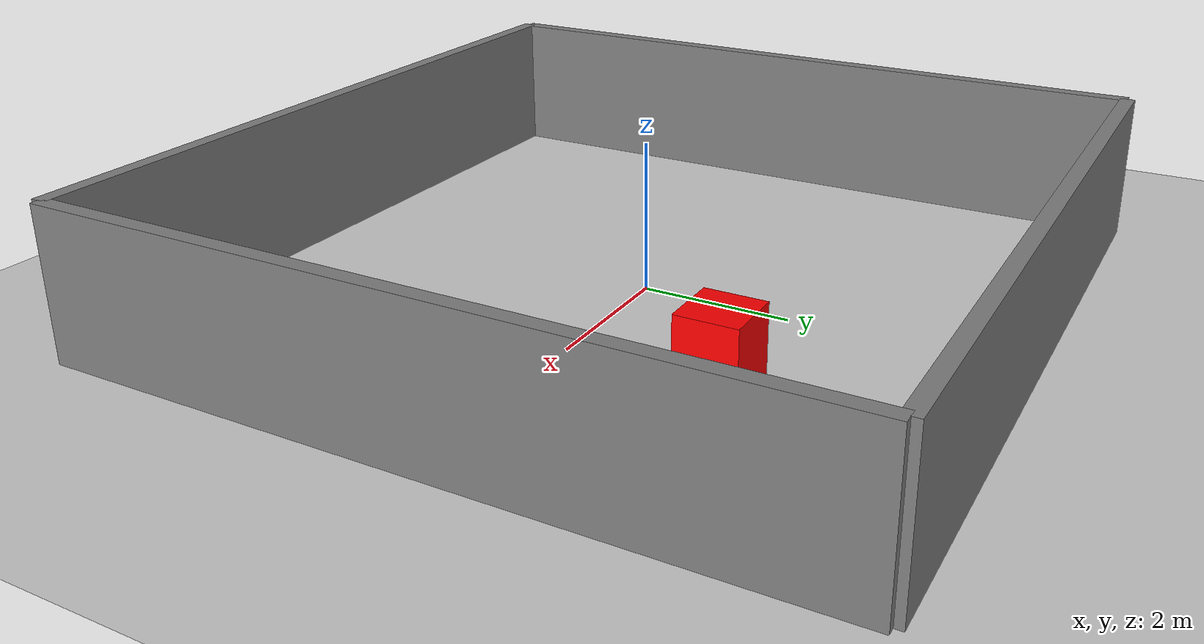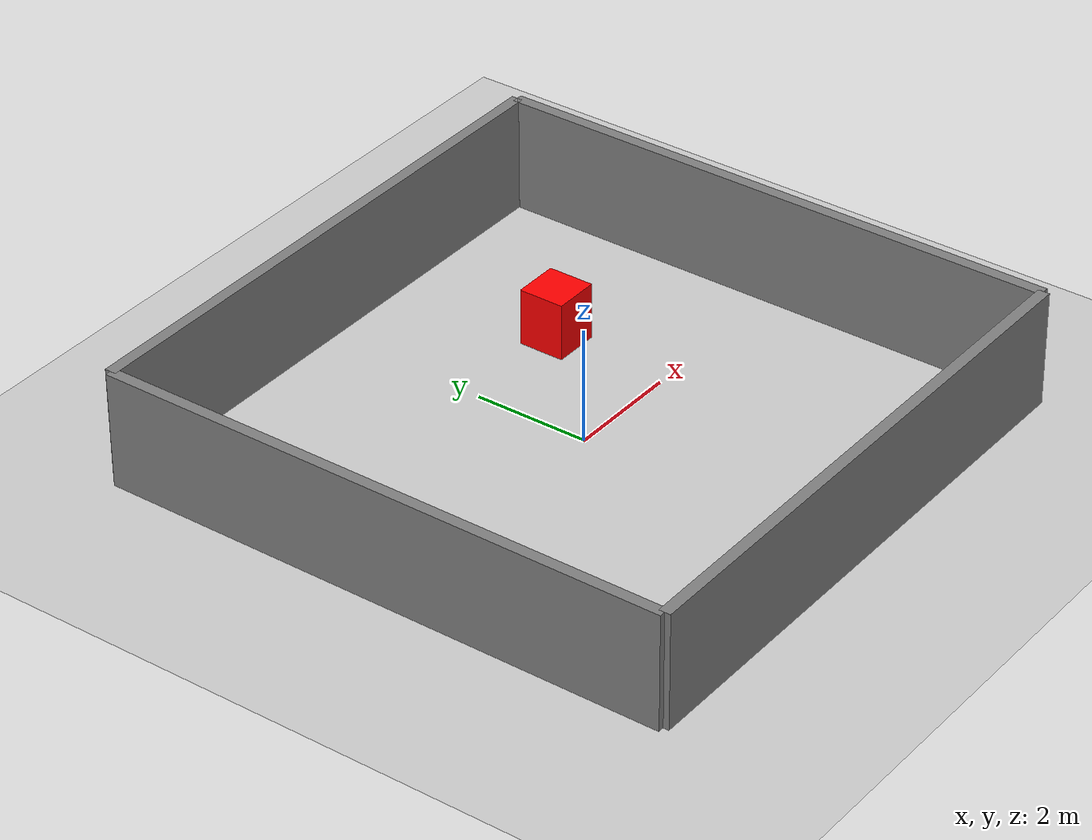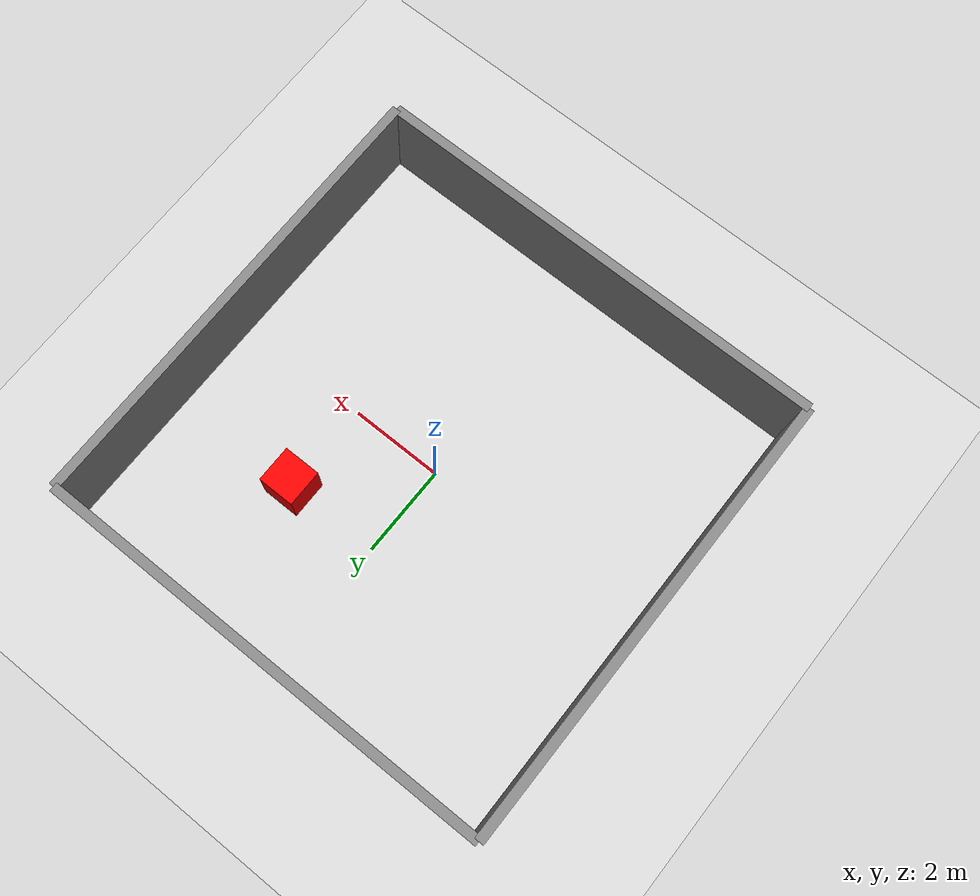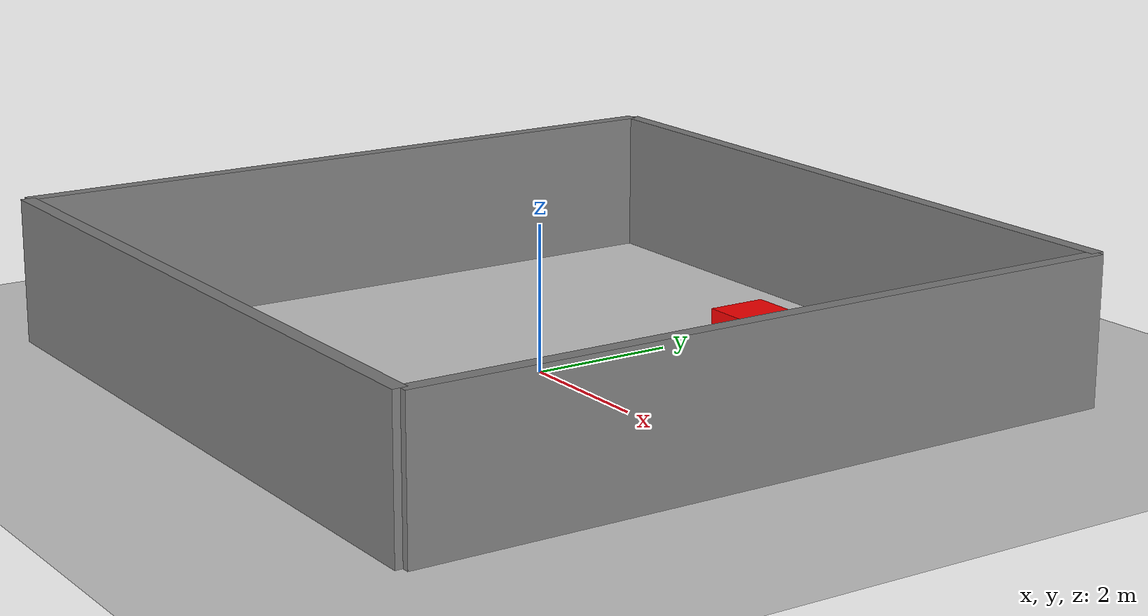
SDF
<?xml version="1.0" ?>
<sdf version="1.7">
  <world name="simple_world">
    <!-- Physics -->
    <physics name="default_physics" type="ode">
      <max_step_size>0.001</max_step_size>
      <real_time_factor>1.0</real_time_factor>
      <real_time_update_rate>1000</real_time_update_rate>
      <ode>
        <solver>
          <type>quick</type>
          <iters>150</iters>
        </solver>
      </ode>
    </physics>

    <!-- Required plugins for Gazebo (Fortress/Garden) -->
    <plugin filename="gz-sim-physics-system" name="gz::sim::systems::Physics"/>
    <plugin filename="gz-sim-user-commands-system" name="gz::sim::systems::UserCommands"/>
    <plugin filename="gz-sim-scene-broadcaster-system" name="gz::sim::systems::SceneBroadcaster"/>
    <plugin filename="gz-sim-sensors-system" name="gz::sim::systems::Sensors">
      <render_engine>ogre2</render_engine>
    </plugin>

    <!-- Ground plane (explicitly defined) -->
    <model name="ground_plane">
      <static>true</static>
      <link name="link">
        <collision name="collision">
          <geometry>
            <plane>
              <normal>0 0 1</normal>
              <size>20 20</size>
            </plane>
          </geometry>
        </collision>
        <visual name="visual">
          <geometry>
            <plane>
              <normal>0 0 1</normal>
              <size>20 20</size>
            </plane>
          </geometry>
          <material>
            <ambient>0.7 0.7 0.7 1</ambient>
            <diffuse>0.8 0.8 0.8 1</diffuse>
          </material>
        </visual>
      </link>
    </model>

    <!-- Sun (directional light) -->

    <!-- Walls to create a test area -->
    <model name="wall_north">
      <static>true</static>
      <pose>0 -5 1 0 0 0</pose>
      <link name="link">
        <collision name="collision">
          <geometry>
            <box>
              <size>10 0.2 2</size>
            </box>
          </geometry>
        </collision>
        <visual name="visual">
          <geometry>
            <box>
              <size>10 0.2 2</size>
            </box>
          </geometry>
          <material>
            <ambient>0.5 0.5 0.5 1</ambient>
          </material>
        </visual>
      </link>
    </model>

    <model name="wall_south">
      <static>true</static>
      <pose>0 5 1 0 0 0</pose>
      <link name="link">
        <collision name="collision">
          <geometry>
            <box>
              <size>10 0.2 2</size>
            </box>
          </geometry>
        </collision>
        <visual name="visual">
          <geometry>
            <box>
              <size>10 0.2 2</size>
            </box>
          </geometry>
          <material>
            <ambient>0.5 0.5 0.5 1</ambient>
          </material>
        </visual>
      </link>
    </model>

    <model name="wall_east">
      <static>true</static>
      <pose>5 0 1 0 0 1.5708</pose>
      <link name="link">
        <collision name="collision">
          <geometry>
            <box>
              <size>10 0.2 2</size>
            </box>
          </geometry>
        </collision>
        <visual name="visual">
          <geometry>
            <box>
              <size>10 0.2 2</size>
            </box>
          </geometry>
          <material>
            <ambient>0.5 0.5 0.5 1</ambient>
          </material>
        </visual>
      </link>
    </model>

    <model name="wall_west">
      <static>true</static>
      <pose>-5 0 1 0 0 1.5708</pose>
      <link name="link">
        <collision name="collision">
          <geometry>
            <box>
              <size>10 0.2 2</size>
            </box>
          </geometry>
        </collision>
        <visual name="visual">
          <geometry>
            <box>
              <size>10 0.2 2</size>
            </box>
          </geometry>
          <material>
            <ambient>0.5 0.5 0.5 1</ambient>
          </material>
        </visual>
      </link>
    </model>

    <!-- Obstacle box for navigation testing -->
    <model name="obstacle_box">
      <static>true</static>
      <pose>2 2 0.5 0 0 0</pose>
      <link name="link">
        <collision name="collision">
          <geometry>
            <box>
              <size>0.8 0.8 1</size>
            </box>
          </geometry>
        </collision>
        <visual name="visual">
          <geometry>
            <box>
              <size>0.8 0.8 1</size>
            </box>
          </geometry>
          <material>
            <ambient>1 0 0 1</ambient>
          </material>
        </visual>
      </link>
    </model>
  </world>
</sdf>
